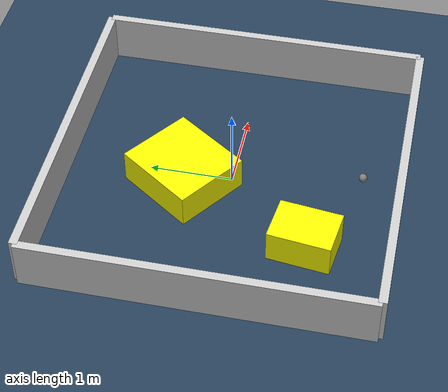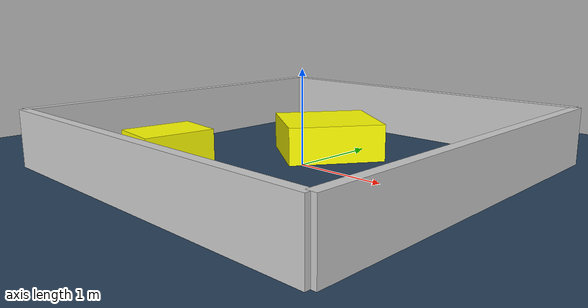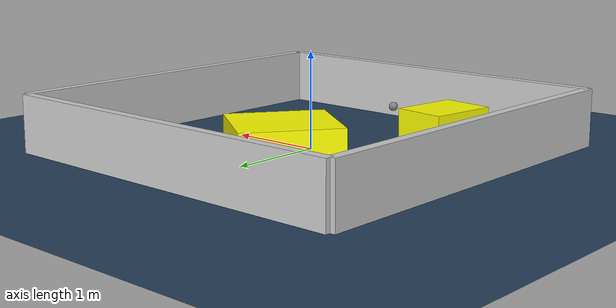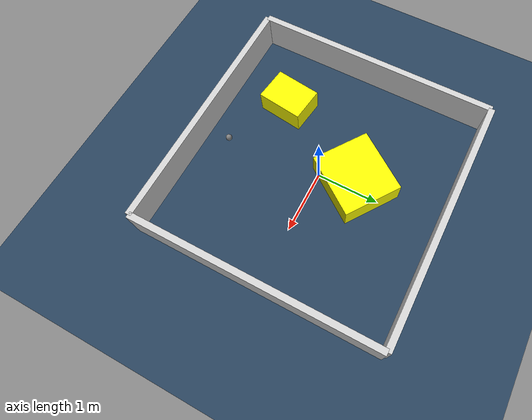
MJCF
<?xml version="1.0" ?>
<mujoco model="generated_environment">
  <option timestep="0.01" integrator="RK4" cone="elliptic"/>
  <default>
    <geom density="1"/>
  </default>
  <asset>
    <texture builtin="gradient" height="3072" rgb1="0.3 0.5 0.7" rgb2="0 0 0" type="skybox" width="512"/>
    <texture builtin="checker" height="300" mark="edge" markrgb="0.8 0.8 0.8" name="groundplane" rgb1="0.2 0.3 0.4" rgb2="0.1 0.2 0.3" type="2d" width="300"/>
    <material name="groundplane" reflectance="0.2" texrepeat="5 5" texture="groundplane" texuniform="true"/>
    <material name="robot" rgba="0.0 1.0 0.0 1"/>
  </asset>
  <worldbody>
    <light dir="0 0 -1" directional="true" pos="0 0 1.5"/>
    <geom condim="4" friction="1.0 0.005 0.001" material="groundplane" name="floor" size="0 0 0.05" type="plane"/>
    <body name="walls">
      <geom name="wall_1" condim="4" pos="-2.0 0.0 0.3" rgba="0.800000011920929 0.800000011920929 0.800000011920929 1.0" size="0.05 2.0 0.3" type="box"/>
      <geom name="wall_2" condim="4" pos="2.0 0.0 0.3" rgba="0.800000011920929 0.800000011920929 0.800000011920929 1.0" size="0.05 2.0 0.3" type="box"/>
      <geom name="wall_3" condim="4" pos="0.0 -2.0 0.3" rgba="0.800000011920929 0.800000011920929 0.800000011920929 1.0" size="2.0 0.05 0.3" type="box"/>
      <geom name="wall_4" condim="4" pos="0.0 2.0 0.3" rgba="0.800000011920929 0.800000011920929 0.800000011920929 1.0" size="2.0 0.05 0.3" type="box"/>
    </body>
    <body name="robot">
      <joint name="joint_x" type="slide" pos="0 0 0" axis="1 0 0"/>
      <joint name="joint_y" type="slide" pos="0 0 0" axis="0 1 0"/>
      <geom name="robot" type="sphere" pos="0.14288755113344687 -1.5475935400543344 0.2" size="0.05" mass="5." friction="1.0 0.005 0.0001" condim="4"/>
      <site name="sensor_ball"/>
    </body>
    <body name="obstacle_1_movable">
      <geom name="obstacle_1_movable" condim="4" pos="-0.9123752381972471 -1.0212554072260434 0.2" euler="0 0 172.76959921300943" friction="1.0 0.005 0.001" rgba="1 1 0 1" size="0.2763016678065182 0.372665924376897 0.2" type="box" mass="0.1"/>
      <joint type="free"/>
    </body>
    <body name="obstacle_2_movable">
      <geom name="obstacle_2_movable" condim="4" pos="-0.1465049382278778 0.5594939525962925 0.2" euler="0 0 54.792185966682894" friction="1.0 0.005 0.001" rgba="1 1 0 1" size="0.5184775870973546 0.46894021231567495 0.2" type="box" mass="0.1"/>
      <joint type="free"/>
    </body>
  </worldbody>
  <actuator>
    <motor name="actuator_x" joint="joint_x" gear="1" ctrlrange="-1 1"/>
    <motor name="actuator_y" joint="joint_y" gear="1" ctrlrange="-1 1"/>
  </actuator>
</mujoco>
